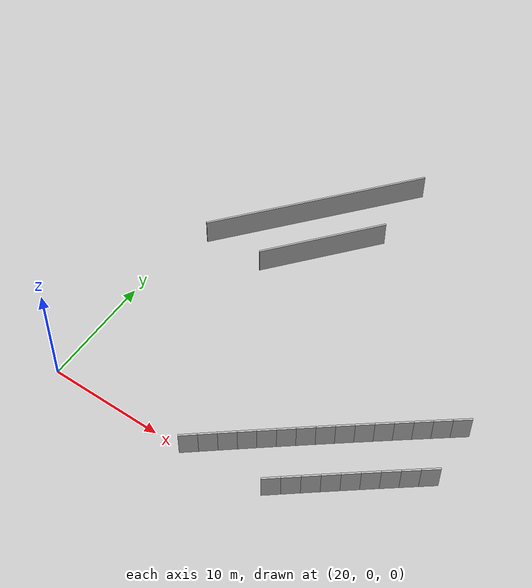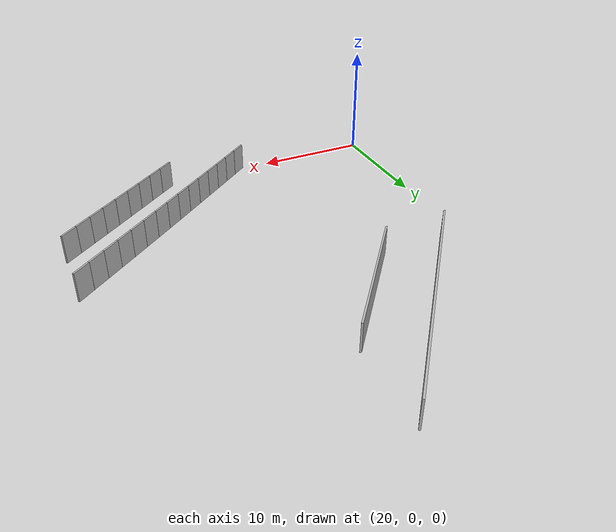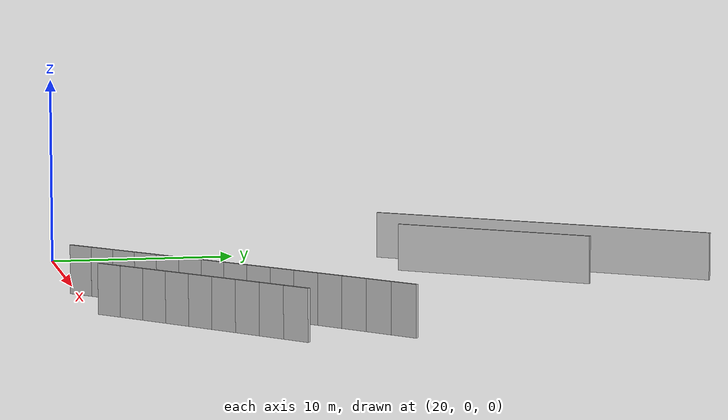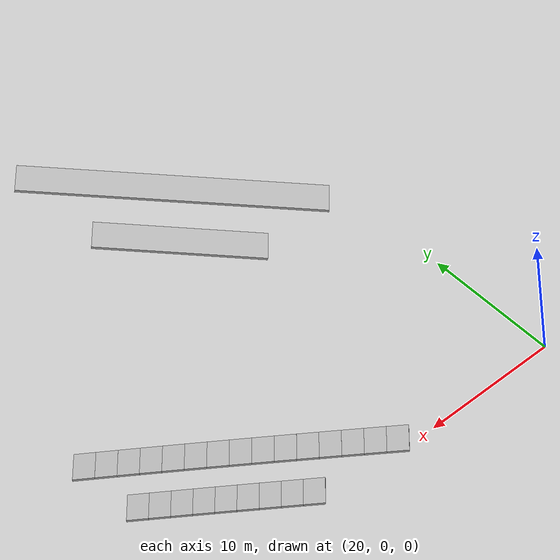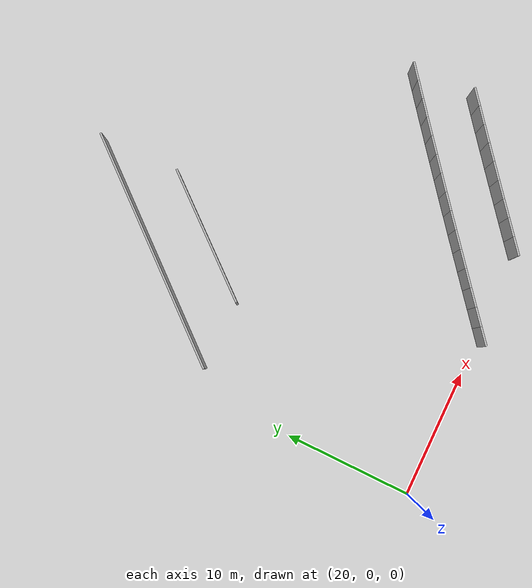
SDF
<?xml version="1.0" ?>
<sdf version="1.6">
  <model name="sps_1143">
    <pose frame="">0 0 0 0 -0 0</pose>
    <static>1</static>
    <self_collide>0</self_collide>
    <allow_auto_disable>0</allow_auto_disable>
    <link name="Wall213">
      <kinematic>0</kinematic>
      <gravity>1</gravity>
      <self_collide>0</self_collide>
      <collision name="collision">
        <geometry>
          <box>
            <size>19.7398 0.15 2.5</size>
          </box>
        </geometry>
        <pose frame="">0 0 0 0 -0 0</pose>
      </collision>
      <visual name="visual">
        <geometry>
          <box>
            <size>19.7398 0.15 2.5</size>
          </box>
        </geometry>
        <pose frame="">0 0 0 0 -0 0</pose>
        <cast_shadows>1</cast_shadows>
        <transparency>0.0</transparency>
      </visual>
      <pose frame="">28.1377 25.4643 1.25 0 0 -2.26727</pose>
    </link>
    <link name="Wall221">
      <kinematic>0</kinematic>
      <gravity>1</gravity>
      <self_collide>0</self_collide>
      <collision name="collision">
        <geometry>
          <box>
            <size>11.2021 0.15 2.5</size>
          </box>
        </geometry>
        <pose frame="">0 0 0 0 -0 0</pose>
      </collision>
      <visual name="visual">
        <geometry>
          <box>
            <size>11.2021 0.15 2.5</size>
          </box>
        </geometry>
        <pose frame="">0 0 0 0 -0 0</pose>
        <cast_shadows>1</cast_shadows>
        <transparency>0.0</transparency>
      </visual>
      <pose frame="">30.8857 22.1975 1.25 0 -0 0.876505</pose>
    </link>
    <link name="Wall3283">
      <kinematic>0</kinematic>
      <gravity>1</gravity>
      <self_collide>0</self_collide>
      <collision name="collision">
        <geometry>
          <box>
            <size>1.49661 0.15 2.5</size>
          </box>
        </geometry>
        <pose frame="">0 0 0 0 -0 0</pose>
      </collision>
      <visual name="visual">
        <geometry>
          <box>
            <size>1.49661 0.15 2.5</size>
          </box>
        </geometry>
        <pose frame="">0 0 0 0 -0 0</pose>
        <cast_shadows>1</cast_shadows>
        <transparency>0.0</transparency>
      </visual>
      <pose frame="">49.7113 8.18169 1.25 0 0 -2.47688</pose>
    </link>
    <link name="Wall3284">
      <kinematic>0</kinematic>
      <gravity>1</gravity>
      <self_collide>0</self_collide>
      <collision name="collision">
        <geometry>
          <box>
            <size>1.4965 0.15 2.5</size>
          </box>
        </geometry>
        <pose frame="">0 0 0 0 -0 0</pose>
      </collision>
      <visual name="visual">
        <geometry>
          <box>
            <size>1.4965 0.15 2.5</size>
          </box>
        </geometry>
        <pose frame="">0 0 0 0 -0 0</pose>
        <cast_shadows>1</cast_shadows>
        <transparency>0.0</transparency>
      </visual>
      <pose frame="">48.5341 7.25761 1.25 0 0 -2.47527</pose>
    </link>
    <link name="Wall3285">
      <kinematic>0</kinematic>
      <gravity>1</gravity>
      <self_collide>0</self_collide>
      <collision name="collision">
        <geometry>
          <box>
            <size>1.49638 0.15 2.5</size>
          </box>
        </geometry>
        <pose frame="">0 0 0 0 -0 0</pose>
      </collision>
      <visual name="visual">
        <geometry>
          <box>
            <size>1.49638 0.15 2.5</size>
          </box>
        </geometry>
        <pose frame="">0 0 0 0 -0 0</pose>
        <cast_shadows>1</cast_shadows>
        <transparency>0.0</transparency>
      </visual>
      <pose frame="">47.3585 6.33171 1.25 0 0 -2.47365</pose>
    </link>
    <link name="Wall3286">
      <kinematic>0</kinematic>
      <gravity>1</gravity>
      <self_collide>0</self_collide>
      <collision name="collision">
        <geometry>
          <box>
            <size>1.49672 0.15 2.5</size>
          </box>
        </geometry>
        <pose frame="">0 0 0 0 -0 0</pose>
      </collision>
      <visual name="visual">
        <geometry>
          <box>
            <size>1.49672 0.15 2.5</size>
          </box>
        </geometry>
        <pose frame="">0 0 0 0 -0 0</pose>
        <cast_shadows>1</cast_shadows>
        <transparency>0.0</transparency>
      </visual>
      <pose frame="">46.1843 5.40388 1.25 0 0 -2.47211</pose>
    </link>
    <link name="Wall3287">
      <kinematic>0</kinematic>
      <gravity>1</gravity>
      <self_collide>0</self_collide>
      <collision name="collision">
        <geometry>
          <box>
            <size>1.49653 0.15 2.5</size>
          </box>
        </geometry>
        <pose frame="">0 0 0 0 -0 0</pose>
      </collision>
      <visual name="visual">
        <geometry>
          <box>
            <size>1.49653 0.15 2.5</size>
          </box>
        </geometry>
        <pose frame="">0 0 0 0 -0 0</pose>
        <cast_shadows>1</cast_shadows>
        <transparency>0.0</transparency>
      </visual>
      <pose frame="">45.0114 4.47417 1.25 0 0 -2.4705</pose>
    </link>
    <link name="Wall3288">
      <kinematic>0</kinematic>
      <gravity>1</gravity>
      <self_collide>0</self_collide>
      <collision name="collision">
        <geometry>
          <box>
            <size>1.49639 0.15 2.5</size>
          </box>
        </geometry>
        <pose frame="">0 0 0 0 -0 0</pose>
      </collision>
      <visual name="visual">
        <geometry>
          <box>
            <size>1.49639 0.15 2.5</size>
          </box>
        </geometry>
        <pose frame="">0 0 0 0 -0 0</pose>
        <cast_shadows>1</cast_shadows>
        <transparency>0.0</transparency>
      </visual>
      <pose frame="">43.8402 3.54268 1.25 0 0 -2.46892</pose>
    </link>
    <link name="Wall3289">
      <kinematic>0</kinematic>
      <gravity>1</gravity>
      <self_collide>0</self_collide>
      <collision name="collision">
        <geometry>
          <box>
            <size>1.4965 0.15 2.5</size>
          </box>
        </geometry>
        <pose frame="">0 0 0 0 -0 0</pose>
      </collision>
      <visual name="visual">
        <geometry>
          <box>
            <size>1.4965 0.15 2.5</size>
          </box>
        </geometry>
        <pose frame="">0 0 0 0 -0 0</pose>
        <cast_shadows>1</cast_shadows>
        <transparency>0.0</transparency>
      </visual>
      <pose frame="">42.6706 2.6093 1.25 0 0 -2.46725</pose>
    </link>
    <link name="Wall3290">
      <kinematic>0</kinematic>
      <gravity>1</gravity>
      <self_collide>0</self_collide>
      <collision name="collision">
        <geometry>
          <box>
            <size>1.4966 0.15 2.5</size>
          </box>
        </geometry>
        <pose frame="">0 0 0 0 -0 0</pose>
      </collision>
      <visual name="visual">
        <geometry>
          <box>
            <size>1.4966 0.15 2.5</size>
          </box>
        </geometry>
        <pose frame="">0 0 0 0 -0 0</pose>
        <cast_shadows>1</cast_shadows>
        <transparency>0.0</transparency>
      </visual>
      <pose frame="">41.5023 1.67399 1.25 0 0 -2.46574</pose>
    </link>
    <link name="Wall3291">
      <kinematic>0</kinematic>
      <gravity>1</gravity>
      <self_collide>0</self_collide>
      <collision name="collision">
        <geometry>
          <box>
            <size>1.49647 0.15 2.5</size>
          </box>
        </geometry>
        <pose frame="">0 0 0 0 -0 0</pose>
      </collision>
      <visual name="visual">
        <geometry>
          <box>
            <size>1.49647 0.15 2.5</size>
          </box>
        </geometry>
        <pose frame="">0 0 0 0 -0 0</pose>
        <cast_shadows>1</cast_shadows>
        <transparency>0.0</transparency>
      </visual>
      <pose frame="">40.3355 0.736892 1.25 0 0 -2.46415</pose>
    </link>
    <link name="Wall5892">
      <kinematic>0</kinematic>
      <gravity>1</gravity>
      <self_collide>0</self_collide>
      <collision name="collision">
        <geometry>
          <box>
            <size>1.50311 0.15 2.5</size>
          </box>
        </geometry>
        <pose frame="">0 0 0 0 -0 0</pose>
      </collision>
      <visual name="visual">
        <geometry>
          <box>
            <size>1.50311 0.15 2.5</size>
          </box>
        </geometry>
        <pose frame="">0 0 0 0 -0 0</pose>
        <cast_shadows>1</cast_shadows>
        <transparency>0.0</transparency>
      </visual>
      <pose frame="">49.5163 13.283 1.25 0 0 -2.48006</pose>
    </link>
    <link name="Wall5893">
      <kinematic>0</kinematic>
      <gravity>1</gravity>
      <self_collide>0</self_collide>
      <collision name="collision">
        <geometry>
          <box>
            <size>1.50305 0.15 2.5</size>
          </box>
        </geometry>
        <pose frame="">0 0 0 0 -0 0</pose>
      </collision>
      <visual name="visual">
        <geometry>
          <box>
            <size>1.50305 0.15 2.5</size>
          </box>
        </geometry>
        <pose frame="">0 0 0 0 -0 0</pose>
        <cast_shadows>1</cast_shadows>
        <transparency>0.0</transparency>
      </visual>
      <pose frame="">48.331 12.3586 1.25 0 0 -2.47833</pose>
    </link>
    <link name="Wall5894">
      <kinematic>0</kinematic>
      <gravity>1</gravity>
      <self_collide>0</self_collide>
      <collision name="collision">
        <geometry>
          <box>
            <size>1.50315 0.15 2.5</size>
          </box>
        </geometry>
        <pose frame="">0 0 0 0 -0 0</pose>
      </collision>
      <visual name="visual">
        <geometry>
          <box>
            <size>1.50315 0.15 2.5</size>
          </box>
        </geometry>
        <pose frame="">0 0 0 0 -0 0</pose>
        <cast_shadows>1</cast_shadows>
        <transparency>0.0</transparency>
      </visual>
      <pose frame="">47.1474 11.4322 1.25 0 0 -2.47673</pose>
    </link>
    <link name="Wall5895">
      <kinematic>0</kinematic>
      <gravity>1</gravity>
      <self_collide>0</self_collide>
      <collision name="collision">
        <geometry>
          <box>
            <size>1.50323 0.15 2.5</size>
          </box>
        </geometry>
        <pose frame="">0 0 0 0 -0 0</pose>
      </collision>
      <visual name="visual">
        <geometry>
          <box>
            <size>1.50323 0.15 2.5</size>
          </box>
        </geometry>
        <pose frame="">0 0 0 0 -0 0</pose>
        <cast_shadows>1</cast_shadows>
        <transparency>0.0</transparency>
      </visual>
      <pose frame="">45.965 10.5039 1.25 0 0 -2.47522</pose>
    </link>
    <link name="Wall5896">
      <kinematic>0</kinematic>
      <gravity>1</gravity>
      <self_collide>0</self_collide>
      <collision name="collision">
        <geometry>
          <box>
            <size>1.50295 0.15 2.5</size>
          </box>
        </geometry>
        <pose frame="">0 0 0 0 -0 0</pose>
      </collision>
      <visual name="visual">
        <geometry>
          <box>
            <size>1.50295 0.15 2.5</size>
          </box>
        </geometry>
        <pose frame="">0 0 0 0 -0 0</pose>
        <cast_shadows>1</cast_shadows>
        <transparency>0.0</transparency>
      </visual>
      <pose frame="">44.7842 9.5739 1.25 0 0 -2.47368</pose>
    </link>
    <link name="Wall5897">
      <kinematic>0</kinematic>
      <gravity>1</gravity>
      <self_collide>0</self_collide>
      <collision name="collision">
        <geometry>
          <box>
            <size>1.5032 0.15 2.5</size>
          </box>
        </geometry>
        <pose frame="">0 0 0 0 -0 0</pose>
      </collision>
      <visual name="visual">
        <geometry>
          <box>
            <size>1.5032 0.15 2.5</size>
          </box>
        </geometry>
        <pose frame="">0 0 0 0 -0 0</pose>
        <cast_shadows>1</cast_shadows>
        <transparency>0.0</transparency>
      </visual>
      <pose frame="">43.6049 8.64207 1.25 0 0 -2.47216</pose>
    </link>
    <link name="Wall5898">
      <kinematic>0</kinematic>
      <gravity>1</gravity>
      <self_collide>0</self_collide>
      <collision name="collision">
        <geometry>
          <box>
            <size>1.50303 0.15 2.5</size>
          </box>
        </geometry>
        <pose frame="">0 0 0 0 -0 0</pose>
      </collision>
      <visual name="visual">
        <geometry>
          <box>
            <size>1.50303 0.15 2.5</size>
          </box>
        </geometry>
        <pose frame="">0 0 0 0 -0 0</pose>
        <cast_shadows>1</cast_shadows>
        <transparency>0.0</transparency>
      </visual>
      <pose frame="">42.427 7.7083 1.25 0 0 -2.47041</pose>
    </link>
    <link name="Wall5899">
      <kinematic>0</kinematic>
      <gravity>1</gravity>
      <self_collide>0</self_collide>
      <collision name="collision">
        <geometry>
          <box>
            <size>1.50311 0.15 2.5</size>
          </box>
        </geometry>
        <pose frame="">0 0 0 0 -0 0</pose>
      </collision>
      <visual name="visual">
        <geometry>
          <box>
            <size>1.50311 0.15 2.5</size>
          </box>
        </geometry>
        <pose frame="">0 0 0 0 -0 0</pose>
        <cast_shadows>1</cast_shadows>
        <transparency>0.0</transparency>
      </visual>
      <pose frame="">41.2507 6.7726 1.25 0 0 -2.46884</pose>
    </link>
    <link name="Wall5900">
      <kinematic>0</kinematic>
      <gravity>1</gravity>
      <self_collide>0</self_collide>
      <collision name="collision">
        <geometry>
          <box>
            <size>1.50293 0.15 2.5</size>
          </box>
        </geometry>
        <pose frame="">0 0 0 0 -0 0</pose>
      </collision>
      <visual name="visual">
        <geometry>
          <box>
            <size>1.50293 0.15 2.5</size>
          </box>
        </geometry>
        <pose frame="">0 0 0 0 -0 0</pose>
        <cast_shadows>1</cast_shadows>
        <transparency>0.0</transparency>
      </visual>
      <pose frame="">40.0759 5.8351 1.25 0 0 -2.4673</pose>
    </link>
    <link name="Wall5901">
      <kinematic>0</kinematic>
      <gravity>1</gravity>
      <self_collide>0</self_collide>
      <collision name="collision">
        <geometry>
          <box>
            <size>1.50302 0.15 2.5</size>
          </box>
        </geometry>
        <pose frame="">0 0 0 0 -0 0</pose>
      </collision>
      <visual name="visual">
        <geometry>
          <box>
            <size>1.50302 0.15 2.5</size>
          </box>
        </geometry>
        <pose frame="">0 0 0 0 -0 0</pose>
        <cast_shadows>1</cast_shadows>
        <transparency>0.0</transparency>
      </visual>
      <pose frame="">38.9025 4.8958 1.25 0 0 -2.46573</pose>
    </link>
    <link name="Wall5902">
      <kinematic>0</kinematic>
      <gravity>1</gravity>
      <self_collide>0</self_collide>
      <collision name="collision">
        <geometry>
          <box>
            <size>1.50315 0.15 2.5</size>
          </box>
        </geometry>
        <pose frame="">0 0 0 0 -0 0</pose>
      </collision>
      <visual name="visual">
        <geometry>
          <box>
            <size>1.50315 0.15 2.5</size>
          </box>
        </geometry>
        <pose frame="">0 0 0 0 -0 0</pose>
        <cast_shadows>1</cast_shadows>
        <transparency>0.0</transparency>
      </visual>
      <pose frame="">37.7306 3.95457 1.25 0 0 -2.46413</pose>
    </link>
    <link name="Wall5903">
      <kinematic>0</kinematic>
      <gravity>1</gravity>
      <self_collide>0</self_collide>
      <collision name="collision">
        <geometry>
          <box>
            <size>1.50317 0.15 2.5</size>
          </box>
        </geometry>
        <pose frame="">0 0 0 0 -0 0</pose>
      </collision>
      <visual name="visual">
        <geometry>
          <box>
            <size>1.50317 0.15 2.5</size>
          </box>
        </geometry>
        <pose frame="">0 0 0 0 -0 0</pose>
        <cast_shadows>1</cast_shadows>
        <transparency>0.0</transparency>
      </visual>
      <pose frame="">36.5601 3.01149 1.25 0 0 -2.46263</pose>
    </link>
    <link name="Wall5904">
      <kinematic>0</kinematic>
      <gravity>1</gravity>
      <self_collide>0</self_collide>
      <collision name="collision">
        <geometry>
          <box>
            <size>1.5032 0.15 2.5</size>
          </box>
        </geometry>
        <pose frame="">0 0 0 0 -0 0</pose>
      </collision>
      <visual name="visual">
        <geometry>
          <box>
            <size>1.5032 0.15 2.5</size>
          </box>
        </geometry>
        <pose frame="">0 0 0 0 -0 0</pose>
        <cast_shadows>1</cast_shadows>
        <transparency>0.0</transparency>
      </visual>
      <pose frame="">35.3911 2.06651 1.25 0 0 -2.46092</pose>
    </link>
    <link name="Wall5905">
      <kinematic>0</kinematic>
      <gravity>1</gravity>
      <self_collide>0</self_collide>
      <collision name="collision">
        <geometry>
          <box>
            <size>1.50296 0.15 2.5</size>
          </box>
        </geometry>
        <pose frame="">0 0 0 0 -0 0</pose>
      </collision>
      <visual name="visual">
        <geometry>
          <box>
            <size>1.50296 0.15 2.5</size>
          </box>
        </geometry>
        <pose frame="">0 0 0 0 -0 0</pose>
        <cast_shadows>1</cast_shadows>
        <transparency>0.0</transparency>
      </visual>
      <pose frame="">34.2237 1.1197 1.25 0 0 -2.45938</pose>
    </link>
    <link name="Wall5906">
      <kinematic>0</kinematic>
      <gravity>1</gravity>
      <self_collide>0</self_collide>
      <collision name="collision">
        <geometry>
          <box>
            <size>1.50315 0.15 2.5</size>
          </box>
        </geometry>
        <pose frame="">0 0 0 0 -0 0</pose>
      </collision>
      <visual name="visual">
        <geometry>
          <box>
            <size>1.50315 0.15 2.5</size>
          </box>
        </geometry>
        <pose frame="">0 0 0 0 -0 0</pose>
        <cast_shadows>1</cast_shadows>
        <transparency>0.0</transparency>
      </visual>
      <pose frame="">33.0579 0.171096 1.25 0 0 -2.45781</pose>
    </link>
  </model>
</sdf>
